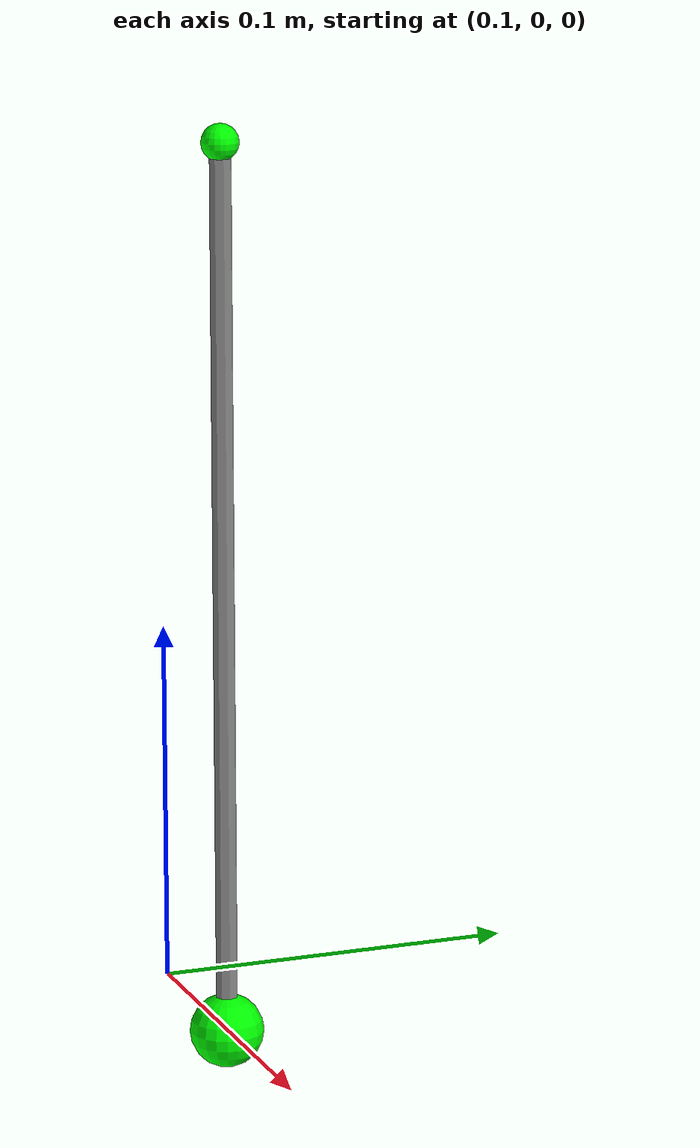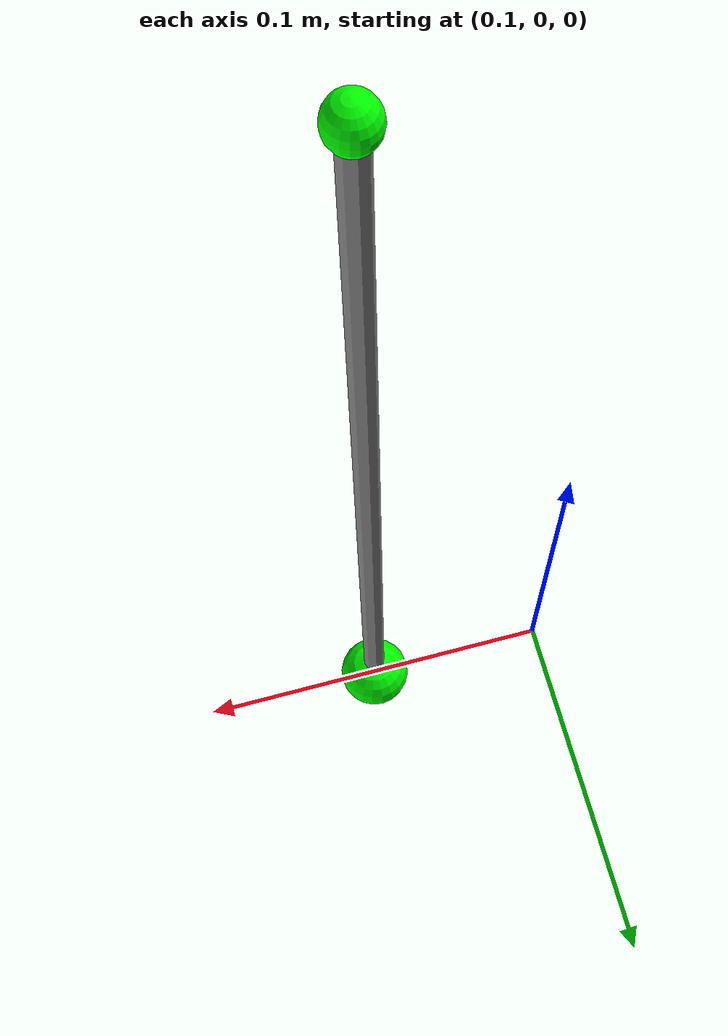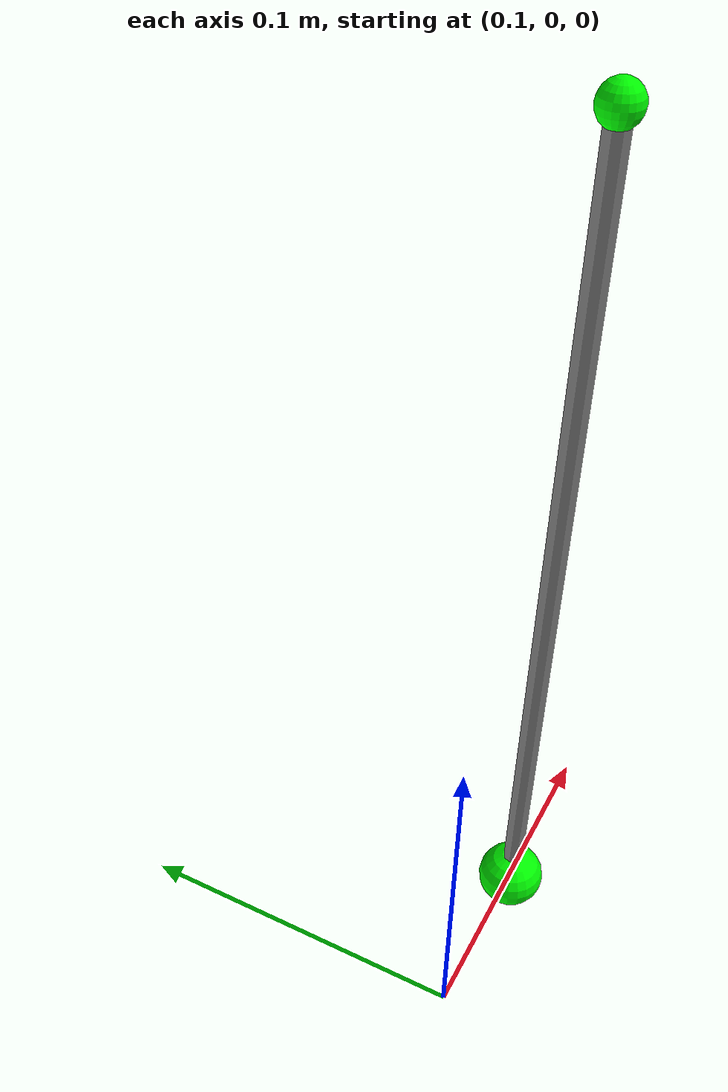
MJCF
<mujoco model="compliant_muscle_test">
  <option timestep="0.001" gravity="0 0 -9.81"/>

  <default>
    <!-- Compliant muscle default class -->

    <!-- Standard muscle for comparison -->
    <default class="standard_muscle">
      <general biasprm="0.1 0.5 1500 1 0 1.99579 10 1.86621 1.4 0" biastype="muscle"
               ctrllimited="true" ctrlrange="0 1"
               dynprm="0.01 0.04 0 0 0 0 0 0 0 0" dyntype="muscle"
               gainprm="0.1 0.5 1500 1 0 1.99579 10 1.86621 1.4 0"
               gaintype="muscle"/>
    </default>
  </default>

  <worldbody>
    <body name="ground"/>

    <!-- Fixed anchor sites for tendons -->
    <site name="fixed_r" pos="0.15 0 0.24" size="0.005" rgba="0 1 0 1"/>

    <!-- Point masses to be pulled by muscles -->
    <body name="mass_r" pos="0.15 0 0">
      <joint name="slide_r" type="slide" axis="0 0 1" limited="false" range="-1 0.0" damping="1"/>
      <site name="mass_r_site" pos="0 0 0" size="0.005" rgba="0 1 0 1"/>
      <geom type="sphere" size="0.01" mass="10.0" rgba="0 1 0 1"/>
    </body>
  </worldbody>

  <!-- Tendon paths for muscles: fixed anchor to point mass site -->
  <tendon>
    <spatial name="tendon_r">
      <site site="fixed_r"/>
      <site site="mass_r_site"/>
    </spatial>
  </tendon>

  <actuator>
    <!-- Compliant muscle pulling left point mass -->

    <!-- Standard muscle pulling right point mass (for comparison) -->
    <muscle class="standard_muscle" name="standard_muscle_r" tendon="tendon_r"
            lengthrange="0.0575158 0.156738"/>
  </actuator>

  <sensor>
    <!-- Tendon length sensors -->
    <tendonpos name="len_r" tendon="tendon_r"/>

    <!-- Actuator force sensors -->
    <actuatorfrc name="frc_r" actuator="standard_muscle_r"/>

    <!-- Joint position sensors -->
    <jointpos name="pos_r" joint="slide_r"/>

    <!-- Joint velocity sensors -->
    <jointvel name="vel_r" joint="slide_r"/>
  </sensor>
</mujoco>
